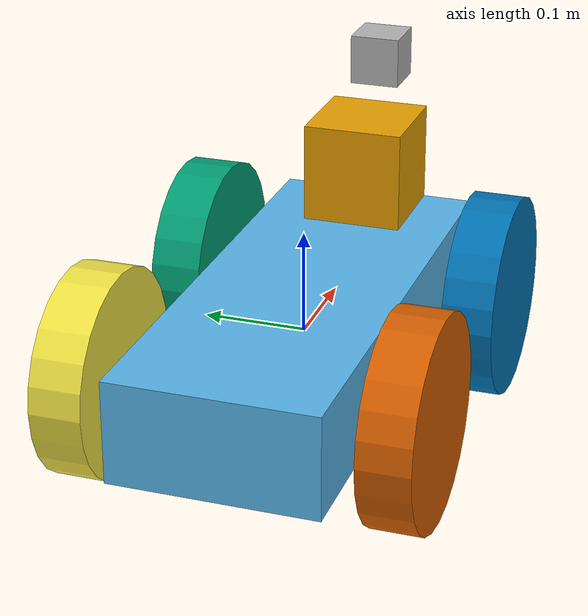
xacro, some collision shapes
<?xml version='1.0'?>

<robot name="udacity_bot" xmlns:xacro="http://www.ros.org/wiki/xacro">

  <xacro:include filename="$(find slam_project)/urdf/udacity_bot.gazebo" />
  <link name="robot_footprint"></link>

  <joint name="robot_footprint_joint" type="fixed">
    <origin xyz="0 0 0" rpy="0 0 0" />
    <parent link="robot_footprint"/>
    <child link="chassis" />
  </joint>

  <joint type="continuous" name="left_wheel_hinge">
    <origin xyz="0.14 0.15 0" rpy="0 0 0"/>
    <child link="left_wheel"/>
    <parent link="chassis"/>
    <axis xyz="0 1 0" rpy="0 0 0"/>
    <limit effort="10000" velocity="1000"/>
    <dynamics damping="1.0" friction="1.0"/>
  </joint>

  <joint type="continuous" name="right_wheel_hinge">
    <origin xyz="0.14 -0.15 0" rpy="0 0 0"/>
    <child link="right_wheel"/>
    <parent link="chassis"/>
    <axis xyz="0 1 0" rpy="0 0 0"/>
    <limit effort="10000" velocity="1000"/>
    <dynamics damping="1.0" friction="1.0"/>
  </joint>

  <joint type="continuous" name="left_wheel_hinge2">
    <origin xyz="-0.14 0.15 0" rpy="0 0 0"/>
    <child link="left_wheel2"/>
    <parent link="chassis"/>
    <axis xyz="0 1 0" rpy="0 0 0"/>
    <limit effort="10000" velocity="1000"/>
    <dynamics damping="1.0" friction="1.0"/>
  </joint>

  <joint type="continuous" name="right_wheel_hinge2">
    <origin xyz="-0.14 -0.15 0" rpy="0 0 0"/>
    <child link="right_wheel2"/>
    <parent link="chassis"/>
    <axis xyz="0 1 0" rpy="0 0 0"/>
    <limit effort="10000" velocity="1000"/>
    <dynamics damping="1.0" friction="1.0"/>
  </joint>

  <link name='chassis'>
    <pose>0 0 0.1 0 0 0</pose>

    <inertial>
      <mass value="15.0"/>
      <origin xyz="0.0 0 0" rpy=" 0 0 0"/>
      <inertia
          ixx="0.1" ixy="0" ixz="0"
          iyy="0.1" iyz="0"
          izz="0.1"
      />
    </inertial>

    <collision name='collision'>
      <origin xyz="0 0 0" rpy=" 0 0 0"/>
      <geometry>
        <box size=".5 .2 .1"/>
      </geometry>
    </collision>

    <visual name='chassis_visual'>
      <origin xyz="0 0 0" rpy=" 0 0 0"/>
      <geometry>
        <box size=".5 .2 .1"/>
      </geometry>
    </visual>
  </link>

    <link name="left_wheel">
        <inertial>
          <mass value="5.0"/>
          <origin xyz="0 0 0" rpy="0 1.5707 1.5707"/>
          <inertia
              ixx="0.1" ixy="0" ixz="0"
              iyy="0.1" iyz="0"
              izz="0.1"
          />
        </inertial>
        <visual>
            <origin xyz="0 0 0" rpy="0 1.5707 1.5707"/>
            <geometry>
                <cylinder length="0.05" radius="0.1"/>
              </geometry>
        </visual>
        <collision>
            <origin xyz="0 0 0" rpy="0 1.5707 1.5707"/>
            <geometry>
                <cylinder length="0.05" radius="0.1"/>
              </geometry>
        </collision>
    </link>
    <link name="left_wheel2">
        <inertial>
          <mass value="5.0"/>
          <origin xyz="0 0 0" rpy="0 1.5707 1.5707"/>
          <inertia
              ixx="0.1" ixy="0" ixz="0"
              iyy="0.1" iyz="0"
              izz="0.1"
          />
        </inertial>
        <visual>
            <origin xyz="0 0 0" rpy="0 1.5707 1.5707"/>
            <geometry>
                <cylinder length="0.05" radius="0.1"/>
              </geometry>
        </visual>
        <collision>
            <origin xyz="0 0 0" rpy="0 1.5707 1.5707"/>
            <geometry>
                <cylinder length="0.05" radius="0.1"/>
              </geometry>
        </collision>
    </link>

    <link name="right_wheel">
        <inertial>
          <mass value="5.0"/>
          <origin xyz="0 0 0" rpy="0 1.5707 1.5707"/>
          <inertia
              ixx="0.1" ixy="0" ixz="0"
              iyy="0.1" iyz="0"
              izz="0.1"
          />
        </inertial>
        <visual>
            <origin xyz="0 0 0" rpy="0 1.5707 1.5707"/>
            <geometry>
                <cylinder length="0.05" radius="0.1"/>
              </geometry>
        </visual>
        <collision>
            <origin xyz="0 0 0" rpy="0 1.5707 1.5707"/>
            <geometry>
                <cylinder length="0.05" radius="0.1"/>
              </geometry>
        </collision>
    </link>
    <link name="right_wheel2">
        <inertial>
          <mass value="5.0"/>
          <origin xyz="0 0 0" rpy="0 1.5707 1.5707"/>
          <inertia
              ixx="0.1" ixy="0" ixz="0"
              iyy="0.1" iyz="0"
              izz="0.1"
          />
        </inertial>
        <visual>
            <origin xyz="0 0 0" rpy="0 1.5707 1.5707"/>
            <geometry>
                <cylinder length="0.05" radius="0.1"/>
              </geometry>
        </visual>
        <collision>
            <origin xyz="0 0 0" rpy="0 1.5707 1.5707"/>
            <geometry>
                <cylinder length="0.05" radius="0.1"/>
              </geometry>
        </collision>
    </link>

    <link name="camera_rgbd_frame"></link>
    <joint name="camera_rgbd_joint" type="fixed">
        <origin xyz="0 0 0" rpy="-${pi/2} 0 -${pi/2}"/>
        <parent link="camera"/>
        <child link="camera_rgbd_frame"/>
    </joint>

    <joint type="fixed" name="camera_joint">
        <origin xyz="0.25 0 0.2" rpy="0 0 0"/>
        <child link="camera"/>
        <parent link="chassis"/>
        <axis xyz="0 1 0" rpy="0 0 0"/>
    </joint>
    <link name="camera">
        <inertial>
          <mass value="0.1"/>
          <origin xyz="0 0 0" rpy="0 0 0"/>
          <inertia ixx="1e-6" ixy="0" ixz="0" iyy="1e-6" iyz="0" izz="1e-6"/>
        </inertial>
        <visual>
            <origin xyz="0 0 0" rpy="0 0 0"/>
            <geometry>
                <box size="0.05 0.05 0.05"/>
            </geometry>
        </visual>
        <collision>
            <origin xyz="0 0 0" rpy="0 0 0"/>
            <geometry>
                <box size="0.05 0.05 0.05"/>
            </geometry>
        </collision>
    </link>

    <joint type="fixed" name="hokuyo_joint">
        <origin xyz="0.2 0 0.1" rpy="0 0 0"/>
        <child link="hokuyo"/>
        <parent link="chassis"/>
        <axis xyz="0 1 0" rpy="0 0 0"/>
    </joint>
    <link name="hokuyo">
        <inertial>
          <mass value="0.1"/>
          <origin xyz="0 0 0" rpy="0 0 0"/>
          <inertia ixx="1e-6" ixy="0" ixz="0" iyy="1e-6" iyz="0" izz="1e-6"/>
        </inertial>
        <visual>
            <origin xyz="0 0 0" rpy="0 0 0"/>
            <geometry>
              <mesh filename="package://slam_project/meshes/hokuyo.dae"/>
            </geometry>
        </visual>
        <collision>
            <origin xyz="0 0 0" rpy="0 0 0"/>
            <geometry>
                <box size="0.1 0.1 0.1"/>
            </geometry>
        </collision>
    </link>

</robot>
